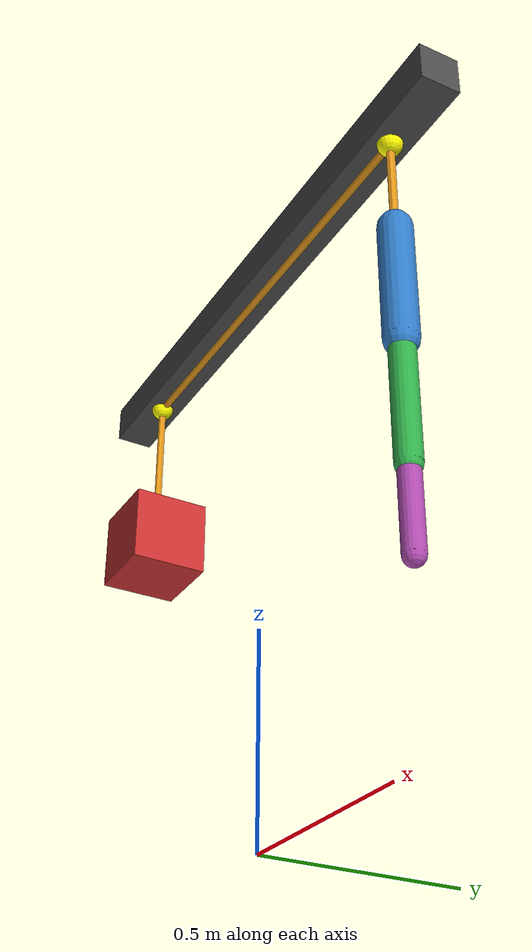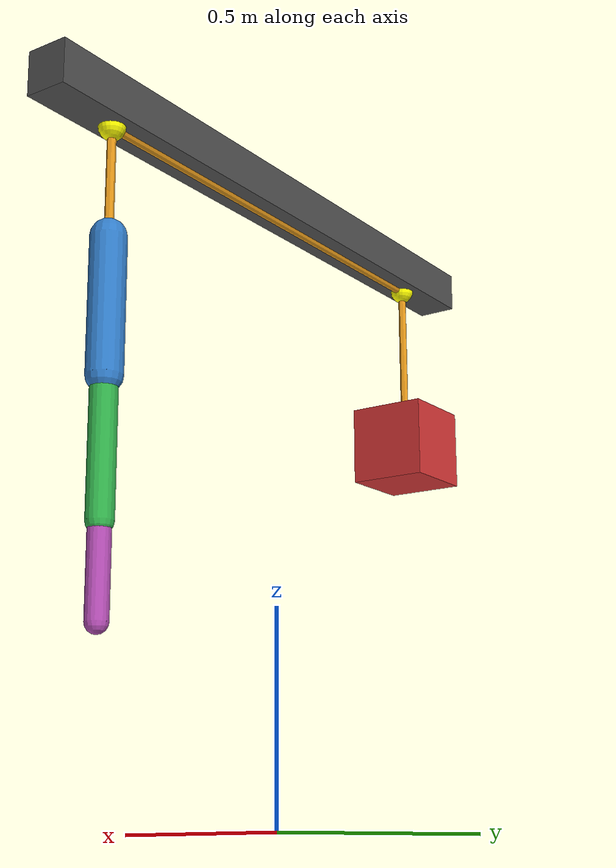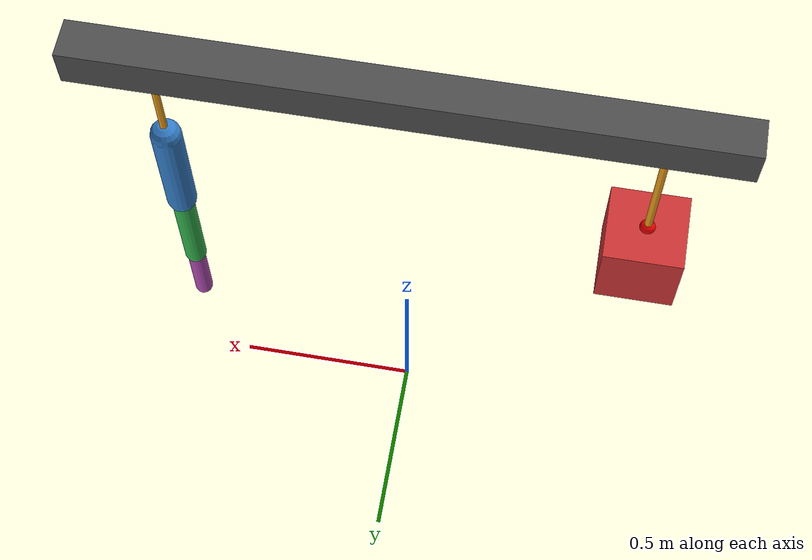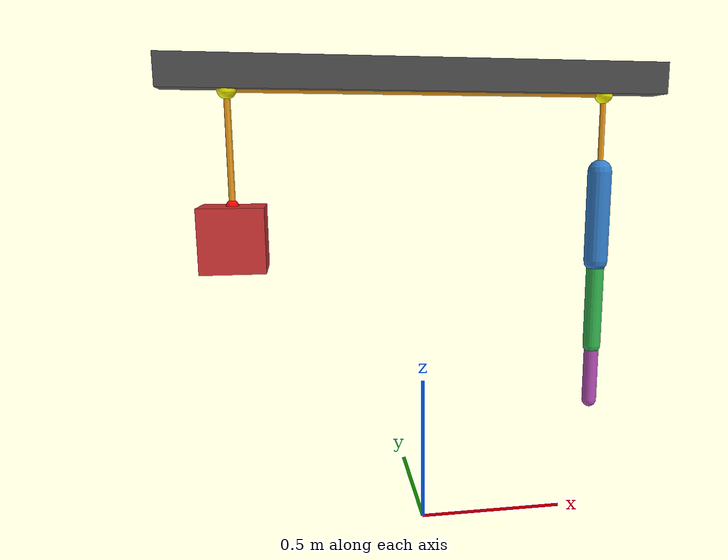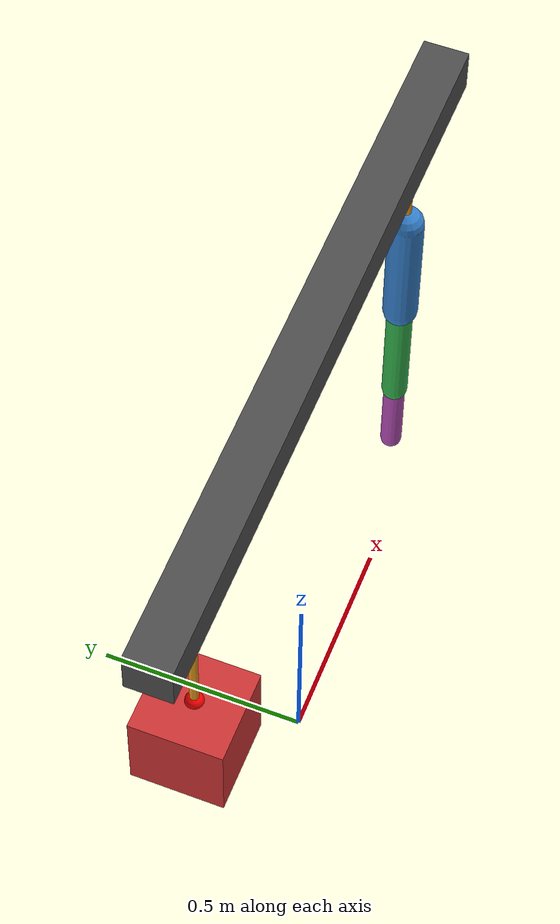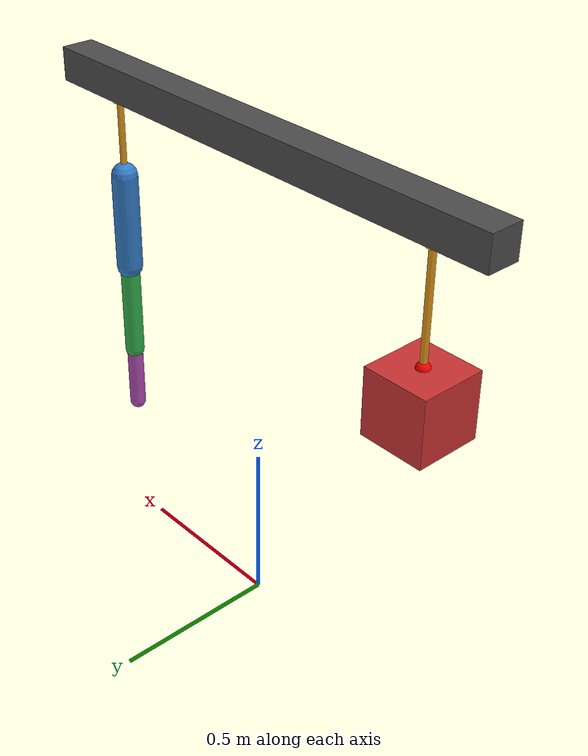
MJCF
<mujoco model="tendon_spatial_anchor">
  <compiler angle="radian" autolimits="true"/>

  <option gravity="0 0 -9.81"/>

  <default>
    <joint damping="0.5" armature="0.01"/>
    <geom rgba="0.6 0.6 0.6 1"/>
  </default>

  <worldbody>
    <!-- Fixed frame/support structure -->
    <body name="frame" pos="0 0 1.5">
      <geom type="box" size="0.8 0.05 0.05" rgba="0.3 0.3 0.3 1"/>
      <!-- Pulley point on left side -->
      <site name="anchor_left" pos="-0.6 0 -0.05" size="0.03" rgba="1 1 0 1"/>
      <!-- Pulley point on right side -->
      <site name="anchor_right" pos="0.6 0 -0.05" size="0.03" rgba="1 1 0 1"/>
    </body>

    <!-- LEFT SIDE: Hanging weight -->
    <body name="weight" pos="-0.6 0 1.0">
      <inertial mass="2.0" pos="0 0 0" diaginertia="0.01 0.01 0.01"/>
      <joint name="weight_slide" type="slide" axis="0 0 1" range="-0.8 0.5"/>
      <geom type="box" size="0.1 0.1 0.1" rgba="0.8 0.2 0.2 1"/>
      <site name="weight_top" pos="0 0 0.1" size="0.02" rgba="1 0 0 1"/>
    </body>

    <!-- RIGHT SIDE: Jointed arm that pulls the tendon -->
    <body name="arm_base" pos="0.6 0 1.2">
      <inertial mass="0.5" pos="0 0 -0.15" diaginertia="0.005 0.005 0.005"/>
      <joint name="arm_hinge1" type="hinge" axis="0 1 0" range="-1.57 1.57"/>
      <geom type="capsule" fromto="0 0 0 0 0 -0.3" size="0.04" rgba="0.2 0.5 0.8 1"/>
      <site name="arm_base_site" pos="0 0 0" size="0.02" rgba="0 1 0 1"/>

      <body name="arm_segment" pos="0 0 -0.3">
        <inertial mass="0.3" pos="0 0 -0.15" diaginertia="0.003 0.003 0.003"/>
        <joint name="arm_hinge2" type="hinge" axis="0 1 0" range="-2.0 2.0"/>
        <geom type="capsule" fromto="0 0 0 0 0 -0.3" size="0.03" rgba="0.2 0.7 0.3 1"/>

        <body name="arm_end" pos="0 0 -0.3">
          <inertial mass="0.2" pos="0 0 -0.1" diaginertia="0.001 0.001 0.001"/>
          <joint name="arm_hinge3" type="hinge" axis="0 1 0" range="-2.0 2.0"/>
          <geom type="capsule" fromto="0 0 0 0 0 -0.2" size="0.025" rgba="0.7 0.3 0.7 1"/>
          <site name="arm_end_site" pos="0 0 -0.2" size="0.02" rgba="0 0 1 1"/>
        </body>
      </body>
    </body>
  </worldbody>

  <!-- Spatial tendon: routes from weight, over anchors, to arm end -->
  <tendon>
    <spatial name="anchor tendon" width="0.01" rgba="0.9 0.6 0.1 1" stiffness="1000" damping="5">
      <site site="weight_top"/>
      <site site="anchor_left"/>
      <site site="anchor_right"/>
      <site site="arm_base_site"/>
      <site site="arm_end_site"/>
    </spatial>
  </tendon>

  <!-- Actuators to control the arm joints -->
  <actuator>
    <position name="arm_ctrl1" joint="arm_hinge1" kp="20" ctrlrange="-1.57 1.57"/>
    <position name="arm_ctrl2" joint="arm_hinge2" kp="15" ctrlrange="-2.0 2.0"/>
    <position name="arm_ctrl3" joint="arm_hinge3" kp="10" ctrlrange="-2.0 2.0"/>
  </actuator>
</mujoco>
